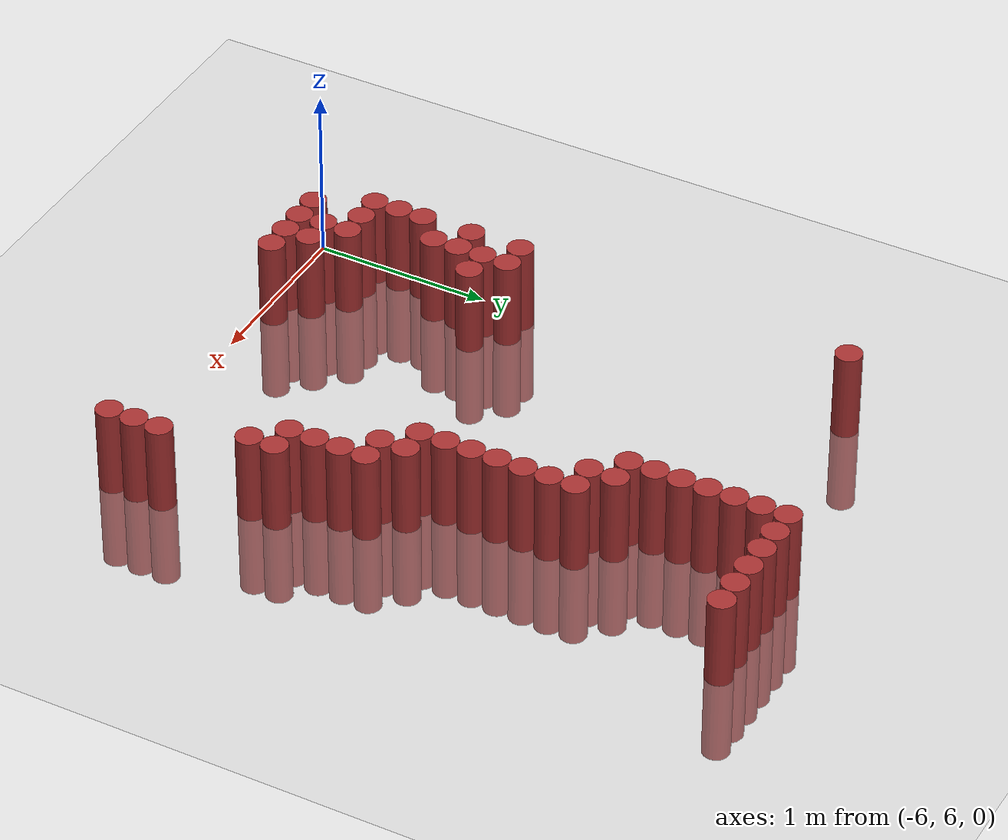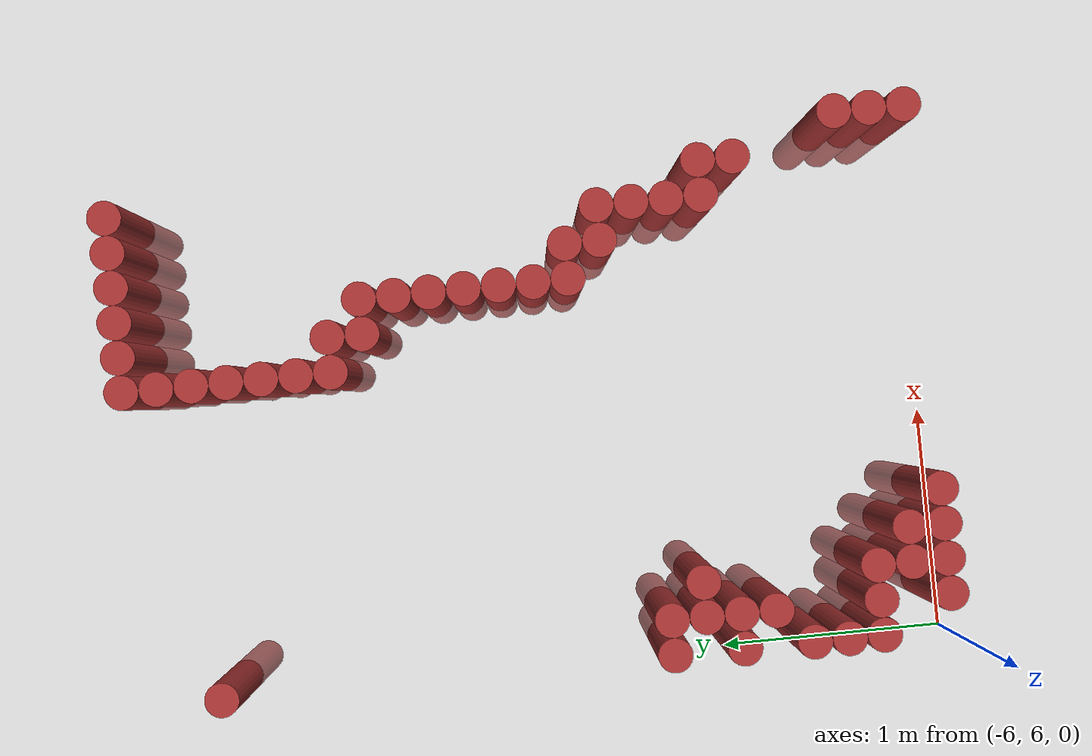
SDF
<sdf version="1.6">
 <world name="default">
  <model name="ground_plane">
   <static>1</static>
   <link name="link">
    <collision name="collision">
     <geometry><plane><normal>0 0 1</normal><size>100 100</size></plane></geometry>
     <surface><friction><ode><mu>100</mu><mu2>50</mu2></ode></friction></surface>
    </collision>
    <visual name="visual">
     <cast_shadows>0</cast_shadows>
     <geometry><plane><normal>0 0 1</normal><size>100 100</size></plane></geometry>
     <material>
      <script><uri>file://media/materials/scripts/gazebo.material</uri><name>Gazebo/Grey</name></script>
     </material>
    </visual>
   </link>
  </model>
  <model name="unit_cylinder_251">
   <static>1</static>
   <pose>-5.925000 6.375000 0.000000 0.000000 0.000000 0.000000</pose>
   <link name="link">
    <inertial>
     <mass>1</mass>
     <inertia><ixx>0.145833</ixx><ixy>0</ixy><ixz>0</ixz><iyy>0.145833</iyy><iyz>0</iyz><izz>0.125</izz></inertia>
    </inertial>
    <collision name="collision">
     <geometry><cylinder><radius>0.075000</radius><length>1</length></cylinder></geometry>
    </collision>
    <visual name="visual">
     <geometry><cylinder><radius>0.075000</radius><length>1</length></cylinder></geometry>
     <material>
      <ambient>0.648000 0.192000 0.192000 1</ambient>
      <diffuse>0.648000 0.192000 0.192000 1</diffuse>
     </material>
     <material>
      <script><name>Gazebo/Grey</name><uri>file://media/materials/scripts/gazebo.material</uri></script>
     </material>
    </visual>
   </link>
  </model>
  <model name="unit_cylinder_252">
   <static>1</static>
   <pose>-5.925000 6.525000 0.000000 0.000000 0.000000 0.000000</pose>
   <link name="link">
    <inertial>
     <mass>1</mass>
     <inertia><ixx>0.145833</ixx><ixy>0</ixy><ixz>0</ixz><iyy>0.145833</iyy><iyz>0</iyz><izz>0.125</izz></inertia>
    </inertial>
    <collision name="collision">
     <geometry><cylinder><radius>0.075000</radius><length>1</length></cylinder></geometry>
    </collision>
    <visual name="visual">
     <geometry><cylinder><radius>0.075000</radius><length>1</length></cylinder></geometry>
     <material>
      <ambient>0.648000 0.192000 0.192000 1</ambient>
      <diffuse>0.648000 0.192000 0.192000 1</diffuse>
     </material>
     <material>
      <script><name>Gazebo/Grey</name><uri>file://media/materials/scripts/gazebo.material</uri></script>
     </material>
    </visual>
   </link>
  </model>
  <model name="unit_cylinder_253">
   <static>1</static>
   <pose>-5.925000 6.675000 0.000000 0.000000 0.000000 0.000000</pose>
   <link name="link">
    <inertial>
     <mass>1</mass>
     <inertia><ixx>0.145833</ixx><ixy>0</ixy><ixz>0</ixz><iyy>0.145833</iyy><iyz>0</iyz><izz>0.125</izz></inertia>
    </inertial>
    <collision name="collision">
     <geometry><cylinder><radius>0.075000</radius><length>1</length></cylinder></geometry>
    </collision>
    <visual name="visual">
     <geometry><cylinder><radius>0.075000</radius><length>1</length></cylinder></geometry>
     <material>
      <ambient>0.648000 0.192000 0.192000 1</ambient>
      <diffuse>0.648000 0.192000 0.192000 1</diffuse>
     </material>
     <material>
      <script><name>Gazebo/Grey</name><uri>file://media/materials/scripts/gazebo.material</uri></script>
     </material>
    </visual>
   </link>
  </model>
  <model name="unit_cylinder_254">
   <static>1</static>
   <pose>-5.925000 6.975000 0.000000 0.000000 0.000000 0.000000</pose>
   <link name="link">
    <inertial>
     <mass>1</mass>
     <inertia><ixx>0.145833</ixx><ixy>0</ixy><ixz>0</ixz><iyy>0.145833</iyy><iyz>0</iyz><izz>0.125</izz></inertia>
    </inertial>
    <collision name="collision">
     <geometry><cylinder><radius>0.075000</radius><length>1</length></cylinder></geometry>
    </collision>
    <visual name="visual">
     <geometry><cylinder><radius>0.075000</radius><length>1</length></cylinder></geometry>
     <material>
      <ambient>0.648000 0.192000 0.192000 1</ambient>
      <diffuse>0.648000 0.192000 0.192000 1</diffuse>
     </material>
     <material>
      <script><name>Gazebo/Grey</name><uri>file://media/materials/scripts/gazebo.material</uri></script>
     </material>
    </visual>
   </link>
  </model>
  <model name="unit_cylinder_255">
   <static>1</static>
   <pose>-5.925000 7.275000 0.000000 0.000000 0.000000 0.000000</pose>
   <link name="link">
    <inertial>
     <mass>1</mass>
     <inertia><ixx>0.145833</ixx><ixy>0</ixy><ixz>0</ixz><iyy>0.145833</iyy><iyz>0</iyz><izz>0.125</izz></inertia>
    </inertial>
    <collision name="collision">
     <geometry><cylinder><radius>0.075000</radius><length>1</length></cylinder></geometry>
    </collision>
    <visual name="visual">
     <geometry><cylinder><radius>0.075000</radius><length>1</length></cylinder></geometry>
     <material>
      <ambient>0.648000 0.192000 0.192000 1</ambient>
      <diffuse>0.648000 0.192000 0.192000 1</diffuse>
     </material>
     <material>
      <script><name>Gazebo/Grey</name><uri>file://media/materials/scripts/gazebo.material</uri></script>
     </material>
    </visual>
   </link>
  </model>
  <model name="unit_cylinder_256">
   <static>1</static>
   <pose>-5.925000 9.225000 0.000000 0.000000 0.000000 0.000000</pose>
   <link name="link">
    <inertial>
     <mass>1</mass>
     <inertia><ixx>0.145833</ixx><ixy>0</ixy><ixz>0</ixz><iyy>0.145833</iyy><iyz>0</iyz><izz>0.125</izz></inertia>
    </inertial>
    <collision name="collision">
     <geometry><cylinder><radius>0.075000</radius><length>1</length></cylinder></geometry>
    </collision>
    <visual name="visual">
     <geometry><cylinder><radius>0.075000</radius><length>1</length></cylinder></geometry>
     <material>
      <ambient>0.648000 0.192000 0.192000 1</ambient>
      <diffuse>0.648000 0.192000 0.192000 1</diffuse>
     </material>
     <material>
      <script><name>Gazebo/Grey</name><uri>file://media/materials/scripts/gazebo.material</uri></script>
     </material>
    </visual>
   </link>
  </model>
  <model name="unit_cylinder_259">
   <static>1</static>
   <pose>-5.775000 6.075000 0.000000 0.000000 0.000000 0.000000</pose>
   <link name="link">
    <inertial>
     <mass>1</mass>
     <inertia><ixx>0.145833</ixx><ixy>0</ixy><ixz>0</ixz><iyy>0.145833</iyy><iyz>0</iyz><izz>0.125</izz></inertia>
    </inertial>
    <collision name="collision">
     <geometry><cylinder><radius>0.075000</radius><length>1</length></cylinder></geometry>
    </collision>
    <visual name="visual">
     <geometry><cylinder><radius>0.075000</radius><length>1</length></cylinder></geometry>
     <material>
      <ambient>0.648000 0.192000 0.192000 1</ambient>
      <diffuse>0.648000 0.192000 0.192000 1</diffuse>
     </material>
     <material>
      <script><name>Gazebo/Grey</name><uri>file://media/materials/scripts/gazebo.material</uri></script>
     </material>
    </visual>
   </link>
  </model>
  <model name="unit_cylinder_260">
   <static>1</static>
   <pose>-5.775000 6.375000 0.000000 0.000000 0.000000 0.000000</pose>
   <link name="link">
    <inertial>
     <mass>1</mass>
     <inertia><ixx>0.145833</ixx><ixy>0</ixy><ixz>0</ixz><iyy>0.145833</iyy><iyz>0</iyz><izz>0.125</izz></inertia>
    </inertial>
    <collision name="collision">
     <geometry><cylinder><radius>0.075000</radius><length>1</length></cylinder></geometry>
    </collision>
    <visual name="visual">
     <geometry><cylinder><radius>0.075000</radius><length>1</length></cylinder></geometry>
     <material>
      <ambient>0.648000 0.192000 0.192000 1</ambient>
      <diffuse>0.648000 0.192000 0.192000 1</diffuse>
     </material>
     <material>
      <script><name>Gazebo/Grey</name><uri>file://media/materials/scripts/gazebo.material</uri></script>
     </material>
    </visual>
   </link>
  </model>
  <model name="unit_cylinder_261">
   <static>1</static>
   <pose>-5.775000 6.825000 0.000000 0.000000 0.000000 0.000000</pose>
   <link name="link">
    <inertial>
     <mass>1</mass>
     <inertia><ixx>0.145833</ixx><ixy>0</ixy><ixz>0</ixz><iyy>0.145833</iyy><iyz>0</iyz><izz>0.125</izz></inertia>
    </inertial>
    <collision name="collision">
     <geometry><cylinder><radius>0.075000</radius><length>1</length></cylinder></geometry>
    </collision>
    <visual name="visual">
     <geometry><cylinder><radius>0.075000</radius><length>1</length></cylinder></geometry>
     <material>
      <ambient>0.648000 0.192000 0.192000 1</ambient>
      <diffuse>0.648000 0.192000 0.192000 1</diffuse>
     </material>
     <material>
      <script><name>Gazebo/Grey</name><uri>file://media/materials/scripts/gazebo.material</uri></script>
     </material>
    </visual>
   </link>
  </model>
  <model name="unit_cylinder_262">
   <static>1</static>
   <pose>-5.775000 6.975000 0.000000 0.000000 0.000000 0.000000</pose>
   <link name="link">
    <inertial>
     <mass>1</mass>
     <inertia><ixx>0.145833</ixx><ixy>0</ixy><ixz>0</ixz><iyy>0.145833</iyy><iyz>0</iyz><izz>0.125</izz></inertia>
    </inertial>
    <collision name="collision">
     <geometry><cylinder><radius>0.075000</radius><length>1</length></cylinder></geometry>
    </collision>
    <visual name="visual">
     <geometry><cylinder><radius>0.075000</radius><length>1</length></cylinder></geometry>
     <material>
      <ambient>0.648000 0.192000 0.192000 1</ambient>
      <diffuse>0.648000 0.192000 0.192000 1</diffuse>
     </material>
     <material>
      <script><name>Gazebo/Grey</name><uri>file://media/materials/scripts/gazebo.material</uri></script>
     </material>
    </visual>
   </link>
  </model>
  <model name="unit_cylinder_263">
   <static>1</static>
   <pose>-5.775000 7.125000 0.000000 0.000000 0.000000 0.000000</pose>
   <link name="link">
    <inertial>
     <mass>1</mass>
     <inertia><ixx>0.145833</ixx><ixy>0</ixy><ixz>0</ixz><iyy>0.145833</iyy><iyz>0</iyz><izz>0.125</izz></inertia>
    </inertial>
    <collision name="collision">
     <geometry><cylinder><radius>0.075000</radius><length>1</length></cylinder></geometry>
    </collision>
    <visual name="visual">
     <geometry><cylinder><radius>0.075000</radius><length>1</length></cylinder></geometry>
     <material>
      <ambient>0.648000 0.192000 0.192000 1</ambient>
      <diffuse>0.648000 0.192000 0.192000 1</diffuse>
     </material>
     <material>
      <script><name>Gazebo/Grey</name><uri>file://media/materials/scripts/gazebo.material</uri></script>
     </material>
    </visual>
   </link>
  </model>
  <model name="unit_cylinder_264">
   <static>1</static>
   <pose>-5.775000 7.275000 0.000000 0.000000 0.000000 0.000000</pose>
   <link name="link">
    <inertial>
     <mass>1</mass>
     <inertia><ixx>0.145833</ixx><ixy>0</ixy><ixz>0</ixz><iyy>0.145833</iyy><iyz>0</iyz><izz>0.125</izz></inertia>
    </inertial>
    <collision name="collision">
     <geometry><cylinder><radius>0.075000</radius><length>1</length></cylinder></geometry>
    </collision>
    <visual name="visual">
     <geometry><cylinder><radius>0.075000</radius><length>1</length></cylinder></geometry>
     <material>
      <ambient>0.648000 0.192000 0.192000 1</ambient>
      <diffuse>0.648000 0.192000 0.192000 1</diffuse>
     </material>
     <material>
      <script><name>Gazebo/Grey</name><uri>file://media/materials/scripts/gazebo.material</uri></script>
     </material>
    </visual>
   </link>
  </model>
  <model name="unit_cylinder_268">
   <static>1</static>
   <pose>-5.625000 6.075000 0.000000 0.000000 0.000000 0.000000</pose>
   <link name="link">
    <inertial>
     <mass>1</mass>
     <inertia><ixx>0.145833</ixx><ixy>0</ixy><ixz>0</ixz><iyy>0.145833</iyy><iyz>0</iyz><izz>0.125</izz></inertia>
    </inertial>
    <collision name="collision">
     <geometry><cylinder><radius>0.075000</radius><length>1</length></cylinder></geometry>
    </collision>
    <visual name="visual">
     <geometry><cylinder><radius>0.075000</radius><length>1</length></cylinder></geometry>
     <material>
      <ambient>0.648000 0.192000 0.192000 1</ambient>
      <diffuse>0.648000 0.192000 0.192000 1</diffuse>
     </material>
     <material>
      <script><name>Gazebo/Grey</name><uri>file://media/materials/scripts/gazebo.material</uri></script>
     </material>
    </visual>
   </link>
  </model>
  <model name="unit_cylinder_269">
   <static>1</static>
   <pose>-5.625000 6.225000 0.000000 0.000000 0.000000 0.000000</pose>
   <link name="link">
    <inertial>
     <mass>1</mass>
     <inertia><ixx>0.145833</ixx><ixy>0</ixy><ixz>0</ixz><iyy>0.145833</iyy><iyz>0</iyz><izz>0.125</izz></inertia>
    </inertial>
    <collision name="collision">
     <geometry><cylinder><radius>0.075000</radius><length>1</length></cylinder></geometry>
    </collision>
    <visual name="visual">
     <geometry><cylinder><radius>0.075000</radius><length>1</length></cylinder></geometry>
     <material>
      <ambient>0.648000 0.192000 0.192000 1</ambient>
      <diffuse>0.648000 0.192000 0.192000 1</diffuse>
     </material>
     <material>
      <script><name>Gazebo/Grey</name><uri>file://media/materials/scripts/gazebo.material</uri></script>
     </material>
    </visual>
   </link>
  </model>
  <model name="unit_cylinder_270">
   <static>1</static>
   <pose>-5.625000 6.375000 0.000000 0.000000 0.000000 0.000000</pose>
   <link name="link">
    <inertial>
     <mass>1</mass>
     <inertia><ixx>0.145833</ixx><ixy>0</ixy><ixz>0</ixz><iyy>0.145833</iyy><iyz>0</iyz><izz>0.125</izz></inertia>
    </inertial>
    <collision name="collision">
     <geometry><cylinder><radius>0.075000</radius><length>1</length></cylinder></geometry>
    </collision>
    <visual name="visual">
     <geometry><cylinder><radius>0.075000</radius><length>1</length></cylinder></geometry>
     <material>
      <ambient>0.648000 0.192000 0.192000 1</ambient>
      <diffuse>0.648000 0.192000 0.192000 1</diffuse>
     </material>
     <material>
      <script><name>Gazebo/Grey</name><uri>file://media/materials/scripts/gazebo.material</uri></script>
     </material>
    </visual>
   </link>
  </model>
  <model name="unit_cylinder_271">
   <static>1</static>
   <pose>-5.625000 7.125000 0.000000 0.000000 0.000000 0.000000</pose>
   <link name="link">
    <inertial>
     <mass>1</mass>
     <inertia><ixx>0.145833</ixx><ixy>0</ixy><ixz>0</ixz><iyy>0.145833</iyy><iyz>0</iyz><izz>0.125</izz></inertia>
    </inertial>
    <collision name="collision">
     <geometry><cylinder><radius>0.075000</radius><length>1</length></cylinder></geometry>
    </collision>
    <visual name="visual">
     <geometry><cylinder><radius>0.075000</radius><length>1</length></cylinder></geometry>
     <material>
      <ambient>0.648000 0.192000 0.192000 1</ambient>
      <diffuse>0.648000 0.192000 0.192000 1</diffuse>
     </material>
     <material>
      <script><name>Gazebo/Grey</name><uri>file://media/materials/scripts/gazebo.material</uri></script>
     </material>
    </visual>
   </link>
  </model>
  <model name="unit_cylinder_275">
   <static>1</static>
   <pose>-5.475000 6.075000 0.000000 0.000000 0.000000 0.000000</pose>
   <link name="link">
    <inertial>
     <mass>1</mass>
     <inertia><ixx>0.145833</ixx><ixy>0</ixy><ixz>0</ixz><iyy>0.145833</iyy><iyz>0</iyz><izz>0.125</izz></inertia>
    </inertial>
    <collision name="collision">
     <geometry><cylinder><radius>0.075000</radius><length>1</length></cylinder></geometry>
    </collision>
    <visual name="visual">
     <geometry><cylinder><radius>0.075000</radius><length>1</length></cylinder></geometry>
     <material>
      <ambient>0.648000 0.192000 0.192000 1</ambient>
      <diffuse>0.648000 0.192000 0.192000 1</diffuse>
     </material>
     <material>
      <script><name>Gazebo/Grey</name><uri>file://media/materials/scripts/gazebo.material</uri></script>
     </material>
    </visual>
   </link>
  </model>
  <model name="unit_cylinder_276">
   <static>1</static>
   <pose>-5.475000 6.225000 0.000000 0.000000 0.000000 0.000000</pose>
   <link name="link">
    <inertial>
     <mass>1</mass>
     <inertia><ixx>0.145833</ixx><ixy>0</ixy><ixz>0</ixz><iyy>0.145833</iyy><iyz>0</iyz><izz>0.125</izz></inertia>
    </inertial>
    <collision name="collision">
     <geometry><cylinder><radius>0.075000</radius><length>1</length></cylinder></geometry>
    </collision>
    <visual name="visual">
     <geometry><cylinder><radius>0.075000</radius><length>1</length></cylinder></geometry>
     <material>
      <ambient>0.648000 0.192000 0.192000 1</ambient>
      <diffuse>0.648000 0.192000 0.192000 1</diffuse>
     </material>
     <material>
      <script><name>Gazebo/Grey</name><uri>file://media/materials/scripts/gazebo.material</uri></script>
     </material>
    </visual>
   </link>
  </model>
  <model name="unit_cylinder_281">
   <static>1</static>
   <pose>-5.325000 6.075000 0.000000 0.000000 0.000000 0.000000</pose>
   <link name="link">
    <inertial>
     <mass>1</mass>
     <inertia><ixx>0.145833</ixx><ixy>0</ixy><ixz>0</ixz><iyy>0.145833</iyy><iyz>0</iyz><izz>0.125</izz></inertia>
    </inertial>
    <collision name="collision">
     <geometry><cylinder><radius>0.075000</radius><length>1</length></cylinder></geometry>
    </collision>
    <visual name="visual">
     <geometry><cylinder><radius>0.075000</radius><length>1</length></cylinder></geometry>
     <material>
      <ambient>0.648000 0.192000 0.192000 1</ambient>
      <diffuse>0.648000 0.192000 0.192000 1</diffuse>
     </material>
     <material>
      <script><name>Gazebo/Grey</name><uri>file://media/materials/scripts/gazebo.material</uri></script>
     </material>
    </visual>
   </link>
  </model>
  <model name="unit_cylinder_288">
   <static>1</static>
   <pose>-4.575000 8.625000 0.000000 0.000000 0.000000 0.000000</pose>
   <link name="link">
    <inertial>
     <mass>1</mass>
     <inertia><ixx>0.145833</ixx><ixy>0</ixy><ixz>0</ixz><iyy>0.145833</iyy><iyz>0</iyz><izz>0.125</izz></inertia>
    </inertial>
    <collision name="collision">
     <geometry><cylinder><radius>0.075000</radius><length>1</length></cylinder></geometry>
    </collision>
    <visual name="visual">
     <geometry><cylinder><radius>0.075000</radius><length>1</length></cylinder></geometry>
     <material>
      <ambient>0.648000 0.192000 0.192000 1</ambient>
      <diffuse>0.648000 0.192000 0.192000 1</diffuse>
     </material>
     <material>
      <script><name>Gazebo/Grey</name><uri>file://media/materials/scripts/gazebo.material</uri></script>
     </material>
    </visual>
   </link>
  </model>
  <model name="unit_cylinder_289">
   <static>1</static>
   <pose>-4.575000 8.775000 0.000000 0.000000 0.000000 0.000000</pose>
   <link name="link">
    <inertial>
     <mass>1</mass>
     <inertia><ixx>0.145833</ixx><ixy>0</ixy><ixz>0</ixz><iyy>0.145833</iyy><iyz>0</iyz><izz>0.125</izz></inertia>
    </inertial>
    <collision name="collision">
     <geometry><cylinder><radius>0.075000</radius><length>1</length></cylinder></geometry>
    </collision>
    <visual name="visual">
     <geometry><cylinder><radius>0.075000</radius><length>1</length></cylinder></geometry>
     <material>
      <ambient>0.648000 0.192000 0.192000 1</ambient>
      <diffuse>0.648000 0.192000 0.192000 1</diffuse>
     </material>
     <material>
      <script><name>Gazebo/Grey</name><uri>file://media/materials/scripts/gazebo.material</uri></script>
     </material>
    </visual>
   </link>
  </model>
  <model name="unit_cylinder_290">
   <static>1</static>
   <pose>-4.575000 8.925000 0.000000 0.000000 0.000000 0.000000</pose>
   <link name="link">
    <inertial>
     <mass>1</mass>
     <inertia><ixx>0.145833</ixx><ixy>0</ixy><ixz>0</ixz><iyy>0.145833</iyy><iyz>0</iyz><izz>0.125</izz></inertia>
    </inertial>
    <collision name="collision">
     <geometry><cylinder><radius>0.075000</radius><length>1</length></cylinder></geometry>
    </collision>
    <visual name="visual">
     <geometry><cylinder><radius>0.075000</radius><length>1</length></cylinder></geometry>
     <material>
      <ambient>0.648000 0.192000 0.192000 1</ambient>
      <diffuse>0.648000 0.192000 0.192000 1</diffuse>
     </material>
     <material>
      <script><name>Gazebo/Grey</name><uri>file://media/materials/scripts/gazebo.material</uri></script>
     </material>
    </visual>
   </link>
  </model>
  <model name="unit_cylinder_291">
   <static>1</static>
   <pose>-4.575000 9.075000 0.000000 0.000000 0.000000 0.000000</pose>
   <link name="link">
    <inertial>
     <mass>1</mass>
     <inertia><ixx>0.145833</ixx><ixy>0</ixy><ixz>0</ixz><iyy>0.145833</iyy><iyz>0</iyz><izz>0.125</izz></inertia>
    </inertial>
    <collision name="collision">
     <geometry><cylinder><radius>0.075000</radius><length>1</length></cylinder></geometry>
    </collision>
    <visual name="visual">
     <geometry><cylinder><radius>0.075000</radius><length>1</length></cylinder></geometry>
     <material>
      <ambient>0.648000 0.192000 0.192000 1</ambient>
      <diffuse>0.648000 0.192000 0.192000 1</diffuse>
     </material>
     <material>
      <script><name>Gazebo/Grey</name><uri>file://media/materials/scripts/gazebo.material</uri></script>
     </material>
    </visual>
   </link>
  </model>
  <model name="unit_cylinder_292">
   <static>1</static>
   <pose>-4.575000 9.225000 0.000000 0.000000 0.000000 0.000000</pose>
   <link name="link">
    <inertial>
     <mass>1</mass>
     <inertia><ixx>0.145833</ixx><ixy>0</ixy><ixz>0</ixz><iyy>0.145833</iyy><iyz>0</iyz><izz>0.125</izz></inertia>
    </inertial>
    <collision name="collision">
     <geometry><cylinder><radius>0.075000</radius><length>1</length></cylinder></geometry>
    </collision>
    <visual name="visual">
     <geometry><cylinder><radius>0.075000</radius><length>1</length></cylinder></geometry>
     <material>
      <ambient>0.648000 0.192000 0.192000 1</ambient>
      <diffuse>0.648000 0.192000 0.192000 1</diffuse>
     </material>
     <material>
      <script><name>Gazebo/Grey</name><uri>file://media/materials/scripts/gazebo.material</uri></script>
     </material>
    </visual>
   </link>
  </model>
  <model name="unit_cylinder_293">
   <static>1</static>
   <pose>-4.575000 9.375000 0.000000 0.000000 0.000000 0.000000</pose>
   <link name="link">
    <inertial>
     <mass>1</mass>
     <inertia><ixx>0.145833</ixx><ixy>0</ixy><ixz>0</ixz><iyy>0.145833</iyy><iyz>0</iyz><izz>0.125</izz></inertia>
    </inertial>
    <collision name="collision">
     <geometry><cylinder><radius>0.075000</radius><length>1</length></cylinder></geometry>
    </collision>
    <visual name="visual">
     <geometry><cylinder><radius>0.075000</radius><length>1</length></cylinder></geometry>
     <material>
      <ambient>0.648000 0.192000 0.192000 1</ambient>
      <diffuse>0.648000 0.192000 0.192000 1</diffuse>
     </material>
     <material>
      <script><name>Gazebo/Grey</name><uri>file://media/materials/scripts/gazebo.material</uri></script>
     </material>
    </visual>
   </link>
  </model>
  <model name="unit_cylinder_294">
   <static>1</static>
   <pose>-4.575000 9.525000 0.000000 0.000000 0.000000 0.000000</pose>
   <link name="link">
    <inertial>
     <mass>1</mass>
     <inertia><ixx>0.145833</ixx><ixy>0</ixy><ixz>0</ixz><iyy>0.145833</iyy><iyz>0</iyz><izz>0.125</izz></inertia>
    </inertial>
    <collision name="collision">
     <geometry><cylinder><radius>0.075000</radius><length>1</length></cylinder></geometry>
    </collision>
    <visual name="visual">
     <geometry><cylinder><radius>0.075000</radius><length>1</length></cylinder></geometry>
     <material>
      <ambient>0.648000 0.192000 0.192000 1</ambient>
      <diffuse>0.648000 0.192000 0.192000 1</diffuse>
     </material>
     <material>
      <script><name>Gazebo/Grey</name><uri>file://media/materials/scripts/gazebo.material</uri></script>
     </material>
    </visual>
   </link>
  </model>
  <model name="unit_cylinder_295">
   <static>1</static>
   <pose>-4.425000 8.475000 0.000000 0.000000 0.000000 0.000000</pose>
   <link name="link">
    <inertial>
     <mass>1</mass>
     <inertia><ixx>0.145833</ixx><ixy>0</ixy><ixz>0</ixz><iyy>0.145833</iyy><iyz>0</iyz><izz>0.125</izz></inertia>
    </inertial>
    <collision name="collision">
     <geometry><cylinder><radius>0.075000</radius><length>1</length></cylinder></geometry>
    </collision>
    <visual name="visual">
     <geometry><cylinder><radius>0.075000</radius><length>1</length></cylinder></geometry>
     <material>
      <ambient>0.648000 0.192000 0.192000 1</ambient>
      <diffuse>0.648000 0.192000 0.192000 1</diffuse>
     </material>
     <material>
      <script><name>Gazebo/Grey</name><uri>file://media/materials/scripts/gazebo.material</uri></script>
     </material>
    </visual>
   </link>
  </model>
  <model name="unit_cylinder_296">
   <static>1</static>
   <pose>-4.425000 8.625000 0.000000 0.000000 0.000000 0.000000</pose>
   <link name="link">
    <inertial>
     <mass>1</mass>
     <inertia><ixx>0.145833</ixx><ixy>0</ixy><ixz>0</ixz><iyy>0.145833</iyy><iyz>0</iyz><izz>0.125</izz></inertia>
    </inertial>
    <collision name="collision">
     <geometry><cylinder><radius>0.075000</radius><length>1</length></cylinder></geometry>
    </collision>
    <visual name="visual">
     <geometry><cylinder><radius>0.075000</radius><length>1</length></cylinder></geometry>
     <material>
      <ambient>0.648000 0.192000 0.192000 1</ambient>
      <diffuse>0.648000 0.192000 0.192000 1</diffuse>
     </material>
     <material>
      <script><name>Gazebo/Grey</name><uri>file://media/materials/scripts/gazebo.material</uri></script>
     </material>
    </visual>
   </link>
  </model>
  <model name="unit_cylinder_297">
   <static>1</static>
   <pose>-4.425000 9.525000 0.000000 0.000000 0.000000 0.000000</pose>
   <link name="link">
    <inertial>
     <mass>1</mass>
     <inertia><ixx>0.145833</ixx><ixy>0</ixy><ixz>0</ixz><iyy>0.145833</iyy><iyz>0</iyz><izz>0.125</izz></inertia>
    </inertial>
    <collision name="collision">
     <geometry><cylinder><radius>0.075000</radius><length>1</length></cylinder></geometry>
    </collision>
    <visual name="visual">
     <geometry><cylinder><radius>0.075000</radius><length>1</length></cylinder></geometry>
     <material>
      <ambient>0.648000 0.192000 0.192000 1</ambient>
      <diffuse>0.648000 0.192000 0.192000 1</diffuse>
     </material>
     <material>
      <script><name>Gazebo/Grey</name><uri>file://media/materials/scripts/gazebo.material</uri></script>
     </material>
    </visual>
   </link>
  </model>
  <model name="unit_cylinder_298">
   <static>1</static>
   <pose>-4.275000 7.575000 0.000000 0.000000 0.000000 0.000000</pose>
   <link name="link">
    <inertial>
     <mass>1</mass>
     <inertia><ixx>0.145833</ixx><ixy>0</ixy><ixz>0</ixz><iyy>0.145833</iyy><iyz>0</iyz><izz>0.125</izz></inertia>
    </inertial>
    <collision name="collision">
     <geometry><cylinder><radius>0.075000</radius><length>1</length></cylinder></geometry>
    </collision>
    <visual name="visual">
     <geometry><cylinder><radius>0.075000</radius><length>1</length></cylinder></geometry>
     <material>
      <ambient>0.648000 0.192000 0.192000 1</ambient>
      <diffuse>0.648000 0.192000 0.192000 1</diffuse>
     </material>
     <material>
      <script><name>Gazebo/Grey</name><uri>file://media/materials/scripts/gazebo.material</uri></script>
     </material>
    </visual>
   </link>
  </model>
  <model name="unit_cylinder_299">
   <static>1</static>
   <pose>-4.275000 7.725000 0.000000 0.000000 0.000000 0.000000</pose>
   <link name="link">
    <inertial>
     <mass>1</mass>
     <inertia><ixx>0.145833</ixx><ixy>0</ixy><ixz>0</ixz><iyy>0.145833</iyy><iyz>0</iyz><izz>0.125</izz></inertia>
    </inertial>
    <collision name="collision">
     <geometry><cylinder><radius>0.075000</radius><length>1</length></cylinder></geometry>
    </collision>
    <visual name="visual">
     <geometry><cylinder><radius>0.075000</radius><length>1</length></cylinder></geometry>
     <material>
      <ambient>0.648000 0.192000 0.192000 1</ambient>
      <diffuse>0.648000 0.192000 0.192000 1</diffuse>
     </material>
     <material>
      <script><name>Gazebo/Grey</name><uri>file://media/materials/scripts/gazebo.material</uri></script>
     </material>
    </visual>
   </link>
  </model>
  <model name="unit_cylinder_300">
   <static>1</static>
   <pose>-4.275000 7.875000 0.000000 0.000000 0.000000 0.000000</pose>
   <link name="link">
    <inertial>
     <mass>1</mass>
     <inertia><ixx>0.145833</ixx><ixy>0</ixy><ixz>0</ixz><iyy>0.145833</iyy><iyz>0</iyz><izz>0.125</izz></inertia>
    </inertial>
    <collision name="collision">
     <geometry><cylinder><radius>0.075000</radius><length>1</length></cylinder></geometry>
    </collision>
    <visual name="visual">
     <geometry><cylinder><radius>0.075000</radius><length>1</length></cylinder></geometry>
     <material>
      <ambient>0.648000 0.192000 0.192000 1</ambient>
      <diffuse>0.648000 0.192000 0.192000 1</diffuse>
     </material>
     <material>
      <script><name>Gazebo/Grey</name><uri>file://media/materials/scripts/gazebo.material</uri></script>
     </material>
    </visual>
   </link>
  </model>
  <model name="unit_cylinder_301">
   <static>1</static>
   <pose>-4.275000 8.025000 0.000000 0.000000 0.000000 0.000000</pose>
   <link name="link">
    <inertial>
     <mass>1</mass>
     <inertia><ixx>0.145833</ixx><ixy>0</ixy><ixz>0</ixz><iyy>0.145833</iyy><iyz>0</iyz><izz>0.125</izz></inertia>
    </inertial>
    <collision name="collision">
     <geometry><cylinder><radius>0.075000</radius><length>1</length></cylinder></geometry>
    </collision>
    <visual name="visual">
     <geometry><cylinder><radius>0.075000</radius><length>1</length></cylinder></geometry>
     <material>
      <ambient>0.648000 0.192000 0.192000 1</ambient>
      <diffuse>0.648000 0.192000 0.192000 1</diffuse>
     </material>
     <material>
      <script><name>Gazebo/Grey</name><uri>file://media/materials/scripts/gazebo.material</uri></script>
     </material>
    </visual>
   </link>
  </model>
  <model name="unit_cylinder_302">
   <static>1</static>
   <pose>-4.275000 8.175000 0.000000 0.000000 0.000000 0.000000</pose>
   <link name="link">
    <inertial>
     <mass>1</mass>
     <inertia><ixx>0.145833</ixx><ixy>0</ixy><ixz>0</ixz><iyy>0.145833</iyy><iyz>0</iyz><izz>0.125</izz></inertia>
    </inertial>
    <collision name="collision">
     <geometry><cylinder><radius>0.075000</radius><length>1</length></cylinder></geometry>
    </collision>
    <visual name="visual">
     <geometry><cylinder><radius>0.075000</radius><length>1</length></cylinder></geometry>
     <material>
      <ambient>0.648000 0.192000 0.192000 1</ambient>
      <diffuse>0.648000 0.192000 0.192000 1</diffuse>
     </material>
     <material>
      <script><name>Gazebo/Grey</name><uri>file://media/materials/scripts/gazebo.material</uri></script>
     </material>
    </visual>
   </link>
  </model>
  <model name="unit_cylinder_303">
   <static>1</static>
   <pose>-4.275000 8.325000 0.000000 0.000000 0.000000 0.000000</pose>
   <link name="link">
    <inertial>
     <mass>1</mass>
     <inertia><ixx>0.145833</ixx><ixy>0</ixy><ixz>0</ixz><iyy>0.145833</iyy><iyz>0</iyz><izz>0.125</izz></inertia>
    </inertial>
    <collision name="collision">
     <geometry><cylinder><radius>0.075000</radius><length>1</length></cylinder></geometry>
    </collision>
    <visual name="visual">
     <geometry><cylinder><radius>0.075000</radius><length>1</length></cylinder></geometry>
     <material>
      <ambient>0.648000 0.192000 0.192000 1</ambient>
      <diffuse>0.648000 0.192000 0.192000 1</diffuse>
     </material>
     <material>
      <script><name>Gazebo/Grey</name><uri>file://media/materials/scripts/gazebo.material</uri></script>
     </material>
    </visual>
   </link>
  </model>
  <model name="unit_cylinder_304">
   <static>1</static>
   <pose>-4.275000 8.475000 0.000000 0.000000 0.000000 0.000000</pose>
   <link name="link">
    <inertial>
     <mass>1</mass>
     <inertia><ixx>0.145833</ixx><ixy>0</ixy><ixz>0</ixz><iyy>0.145833</iyy><iyz>0</iyz><izz>0.125</izz></inertia>
    </inertial>
    <collision name="collision">
     <geometry><cylinder><radius>0.075000</radius><length>1</length></cylinder></geometry>
    </collision>
    <visual name="visual">
     <geometry><cylinder><radius>0.075000</radius><length>1</length></cylinder></geometry>
     <material>
      <ambient>0.648000 0.192000 0.192000 1</ambient>
      <diffuse>0.648000 0.192000 0.192000 1</diffuse>
     </material>
     <material>
      <script><name>Gazebo/Grey</name><uri>file://media/materials/scripts/gazebo.material</uri></script>
     </material>
    </visual>
   </link>
  </model>
  <model name="unit_cylinder_305">
   <static>1</static>
   <pose>-4.275000 9.525000 0.000000 0.000000 0.000000 0.000000</pose>
   <link name="link">
    <inertial>
     <mass>1</mass>
     <inertia><ixx>0.145833</ixx><ixy>0</ixy><ixz>0</ixz><iyy>0.145833</iyy><iyz>0</iyz><izz>0.125</izz></inertia>
    </inertial>
    <collision name="collision">
     <geometry><cylinder><radius>0.075000</radius><length>1</length></cylinder></geometry>
    </collision>
    <visual name="visual">
     <geometry><cylinder><radius>0.075000</radius><length>1</length></cylinder></geometry>
     <material>
      <ambient>0.648000 0.192000 0.192000 1</ambient>
      <diffuse>0.648000 0.192000 0.192000 1</diffuse>
     </material>
     <material>
      <script><name>Gazebo/Grey</name><uri>file://media/materials/scripts/gazebo.material</uri></script>
     </material>
    </visual>
   </link>
  </model>
  <model name="unit_cylinder_306">
   <static>1</static>
   <pose>-4.125000 7.425000 0.000000 0.000000 0.000000 0.000000</pose>
   <link name="link">
    <inertial>
     <mass>1</mass>
     <inertia><ixx>0.145833</ixx><ixy>0</ixy><ixz>0</ixz><iyy>0.145833</iyy><iyz>0</iyz><izz>0.125</izz></inertia>
    </inertial>
    <collision name="collision">
     <geometry><cylinder><radius>0.075000</radius><length>1</length></cylinder></geometry>
    </collision>
    <visual name="visual">
     <geometry><cylinder><radius>0.075000</radius><length>1</length></cylinder></geometry>
     <material>
      <ambient>0.648000 0.192000 0.192000 1</ambient>
      <diffuse>0.648000 0.192000 0.192000 1</diffuse>
     </material>
     <material>
      <script><name>Gazebo/Grey</name><uri>file://media/materials/scripts/gazebo.material</uri></script>
     </material>
    </visual>
   </link>
  </model>
  <model name="unit_cylinder_307">
   <static>1</static>
   <pose>-4.125000 7.575000 0.000000 0.000000 0.000000 0.000000</pose>
   <link name="link">
    <inertial>
     <mass>1</mass>
     <inertia><ixx>0.145833</ixx><ixy>0</ixy><ixz>0</ixz><iyy>0.145833</iyy><iyz>0</iyz><izz>0.125</izz></inertia>
    </inertial>
    <collision name="collision">
     <geometry><cylinder><radius>0.075000</radius><length>1</length></cylinder></geometry>
    </collision>
    <visual name="visual">
     <geometry><cylinder><radius>0.075000</radius><length>1</length></cylinder></geometry>
     <material>
      <ambient>0.648000 0.192000 0.192000 1</ambient>
      <diffuse>0.648000 0.192000 0.192000 1</diffuse>
     </material>
     <material>
      <script><name>Gazebo/Grey</name><uri>file://media/materials/scripts/gazebo.material</uri></script>
     </material>
    </visual>
   </link>
  </model>
  <model name="unit_cylinder_308">
   <static>1</static>
   <pose>-4.125000 9.525000 0.000000 0.000000 0.000000 0.000000</pose>
   <link name="link">
    <inertial>
     <mass>1</mass>
     <inertia><ixx>0.145833</ixx><ixy>0</ixy><ixz>0</ixz><iyy>0.145833</iyy><iyz>0</iyz><izz>0.125</izz></inertia>
    </inertial>
    <collision name="collision">
     <geometry><cylinder><radius>0.075000</radius><length>1</length></cylinder></geometry>
    </collision>
    <visual name="visual">
     <geometry><cylinder><radius>0.075000</radius><length>1</length></cylinder></geometry>
     <material>
      <ambient>0.648000 0.192000 0.192000 1</ambient>
      <diffuse>0.648000 0.192000 0.192000 1</diffuse>
     </material>
     <material>
      <script><name>Gazebo/Grey</name><uri>file://media/materials/scripts/gazebo.material</uri></script>
     </material>
    </visual>
   </link>
  </model>
  <model name="unit_cylinder_309">
   <static>1</static>
   <pose>-3.975000 6.975000 0.000000 0.000000 0.000000 0.000000</pose>
   <link name="link">
    <inertial>
     <mass>1</mass>
     <inertia><ixx>0.145833</ixx><ixy>0</ixy><ixz>0</ixz><iyy>0.145833</iyy><iyz>0</iyz><izz>0.125</izz></inertia>
    </inertial>
    <collision name="collision">
     <geometry><cylinder><radius>0.075000</radius><length>1</length></cylinder></geometry>
    </collision>
    <visual name="visual">
     <geometry><cylinder><radius>0.075000</radius><length>1</length></cylinder></geometry>
     <material>
      <ambient>0.648000 0.192000 0.192000 1</ambient>
      <diffuse>0.648000 0.192000 0.192000 1</diffuse>
     </material>
     <material>
      <script><name>Gazebo/Grey</name><uri>file://media/materials/scripts/gazebo.material</uri></script>
     </material>
    </visual>
   </link>
  </model>
  <model name="unit_cylinder_310">
   <static>1</static>
   <pose>-3.975000 7.125000 0.000000 0.000000 0.000000 0.000000</pose>
   <link name="link">
    <inertial>
     <mass>1</mass>
     <inertia><ixx>0.145833</ixx><ixy>0</ixy><ixz>0</ixz><iyy>0.145833</iyy><iyz>0</iyz><izz>0.125</izz></inertia>
    </inertial>
    <collision name="collision">
     <geometry><cylinder><radius>0.075000</radius><length>1</length></cylinder></geometry>
    </collision>
    <visual name="visual">
     <geometry><cylinder><radius>0.075000</radius><length>1</length></cylinder></geometry>
     <material>
      <ambient>0.648000 0.192000 0.192000 1</ambient>
      <diffuse>0.648000 0.192000 0.192000 1</diffuse>
     </material>
     <material>
      <script><name>Gazebo/Grey</name><uri>file://media/materials/scripts/gazebo.material</uri></script>
     </material>
    </visual>
   </link>
  </model>
  <model name="unit_cylinder_311">
   <static>1</static>
   <pose>-3.975000 7.275000 0.000000 0.000000 0.000000 0.000000</pose>
   <link name="link">
    <inertial>
     <mass>1</mass>
     <inertia><ixx>0.145833</ixx><ixy>0</ixy><ixz>0</ixz><iyy>0.145833</iyy><iyz>0</iyz><izz>0.125</izz></inertia>
    </inertial>
    <collision name="collision">
     <geometry><cylinder><radius>0.075000</radius><length>1</length></cylinder></geometry>
    </collision>
    <visual name="visual">
     <geometry><cylinder><radius>0.075000</radius><length>1</length></cylinder></geometry>
     <material>
      <ambient>0.648000 0.192000 0.192000 1</ambient>
      <diffuse>0.648000 0.192000 0.192000 1</diffuse>
     </material>
     <material>
      <script><name>Gazebo/Grey</name><uri>file://media/materials/scripts/gazebo.material</uri></script>
     </material>
    </visual>
   </link>
  </model>
  <model name="unit_cylinder_312">
   <static>1</static>
   <pose>-3.975000 7.425000 0.000000 0.000000 0.000000 0.000000</pose>
   <link name="link">
    <inertial>
     <mass>1</mass>
     <inertia><ixx>0.145833</ixx><ixy>0</ixy><ixz>0</ixz><iyy>0.145833</iyy><iyz>0</iyz><izz>0.125</izz></inertia>
    </inertial>
    <collision name="collision">
     <geometry><cylinder><radius>0.075000</radius><length>1</length></cylinder></geometry>
    </collision>
    <visual name="visual">
     <geometry><cylinder><radius>0.075000</radius><length>1</length></cylinder></geometry>
     <material>
      <ambient>0.648000 0.192000 0.192000 1</ambient>
      <diffuse>0.648000 0.192000 0.192000 1</diffuse>
     </material>
     <material>
      <script><name>Gazebo/Grey</name><uri>file://media/materials/scripts/gazebo.material</uri></script>
     </material>
    </visual>
   </link>
  </model>
  <model name="unit_cylinder_313">
   <static>1</static>
   <pose>-3.975000 9.525000 0.000000 0.000000 0.000000 0.000000</pose>
   <link name="link">
    <inertial>
     <mass>1</mass>
     <inertia><ixx>0.145833</ixx><ixy>0</ixy><ixz>0</ixz><iyy>0.145833</iyy><iyz>0</iyz><izz>0.125</izz></inertia>
    </inertial>
    <collision name="collision">
     <geometry><cylinder><radius>0.075000</radius><length>1</length></cylinder></geometry>
    </collision>
    <visual name="visual">
     <geometry><cylinder><radius>0.075000</radius><length>1</length></cylinder></geometry>
     <material>
      <ambient>0.648000 0.192000 0.192000 1</ambient>
      <diffuse>0.648000 0.192000 0.192000 1</diffuse>
     </material>
     <material>
      <script><name>Gazebo/Grey</name><uri>file://media/materials/scripts/gazebo.material</uri></script>
     </material>
    </visual>
   </link>
  </model>
  <model name="unit_cylinder_314">
   <static>1</static>
   <pose>-3.825000 6.825000 0.000000 0.000000 0.000000 0.000000</pose>
   <link name="link">
    <inertial>
     <mass>1</mass>
     <inertia><ixx>0.145833</ixx><ixy>0</ixy><ixz>0</ixz><iyy>0.145833</iyy><iyz>0</iyz><izz>0.125</izz></inertia>
    </inertial>
    <collision name="collision">
     <geometry><cylinder><radius>0.075000</radius><length>1</length></cylinder></geometry>
    </collision>
    <visual name="visual">
     <geometry><cylinder><radius>0.075000</radius><length>1</length></cylinder></geometry>
     <material>
      <ambient>0.648000 0.192000 0.192000 1</ambient>
      <diffuse>0.648000 0.192000 0.192000 1</diffuse>
     </material>
     <material>
      <script><name>Gazebo/Grey</name><uri>file://media/materials/scripts/gazebo.material</uri></script>
     </material>
    </visual>
   </link>
  </model>
  <model name="unit_cylinder_315">
   <static>1</static>
   <pose>-3.825000 6.975000 0.000000 0.000000 0.000000 0.000000</pose>
   <link name="link">
    <inertial>
     <mass>1</mass>
     <inertia><ixx>0.145833</ixx><ixy>0</ixy><ixz>0</ixz><iyy>0.145833</iyy><iyz>0</iyz><izz>0.125</izz></inertia>
    </inertial>
    <collision name="collision">
     <geometry><cylinder><radius>0.075000</radius><length>1</length></cylinder></geometry>
    </collision>
    <visual name="visual">
     <geometry><cylinder><radius>0.075000</radius><length>1</length></cylinder></geometry>
     <material>
      <ambient>0.648000 0.192000 0.192000 1</ambient>
      <diffuse>0.648000 0.192000 0.192000 1</diffuse>
     </material>
     <material>
      <script><name>Gazebo/Grey</name><uri>file://media/materials/scripts/gazebo.material</uri></script>
     </material>
    </visual>
   </link>
  </model>
  <model name="unit_cylinder_316">
   <static>1</static>
   <pose>-3.825000 9.525000 0.000000 0.000000 0.000000 0.000000</pose>
   <link name="link">
    <inertial>
     <mass>1</mass>
     <inertia><ixx>0.145833</ixx><ixy>0</ixy><ixz>0</ixz><iyy>0.145833</iyy><iyz>0</iyz><izz>0.125</izz></inertia>
    </inertial>
    <collision name="collision">
     <geometry><cylinder><radius>0.075000</radius><length>1</length></cylinder></geometry>
    </collision>
    <visual name="visual">
     <geometry><cylinder><radius>0.075000</radius><length>1</length></cylinder></geometry>
     <material>
      <ambient>0.648000 0.192000 0.192000 1</ambient>
      <diffuse>0.648000 0.192000 0.192000 1</diffuse>
     </material>
     <material>
      <script><name>Gazebo/Grey</name><uri>file://media/materials/scripts/gazebo.material</uri></script>
     </material>
    </visual>
   </link>
  </model>
  <model name="unit_cylinder_323">
   <static>1</static>
   <pose>-3.675000 6.075000 0.000000 0.000000 0.000000 0.000000</pose>
   <link name="link">
    <inertial>
     <mass>1</mass>
     <inertia><ixx>0.145833</ixx><ixy>0</ixy><ixz>0</ixz><iyy>0.145833</iyy><iyz>0</iyz><izz>0.125</izz></inertia>
    </inertial>
    <collision name="collision">
     <geometry><cylinder><radius>0.075000</radius><length>1</length></cylinder></geometry>
    </collision>
    <visual name="visual">
     <geometry><cylinder><radius>0.075000</radius><length>1</length></cylinder></geometry>
     <material>
      <ambient>0.648000 0.192000 0.192000 1</ambient>
      <diffuse>0.648000 0.192000 0.192000 1</diffuse>
     </material>
     <material>
      <script><name>Gazebo/Grey</name><uri>file://media/materials/scripts/gazebo.material</uri></script>
     </material>
    </visual>
   </link>
  </model>
  <model name="unit_cylinder_324">
   <static>1</static>
   <pose>-3.675000 6.225000 0.000000 0.000000 0.000000 0.000000</pose>
   <link name="link">
    <inertial>
     <mass>1</mass>
     <inertia><ixx>0.145833</ixx><ixy>0</ixy><ixz>0</ixz><iyy>0.145833</iyy><iyz>0</iyz><izz>0.125</izz></inertia>
    </inertial>
    <collision name="collision">
     <geometry><cylinder><radius>0.075000</radius><length>1</length></cylinder></geometry>
    </collision>
    <visual name="visual">
     <geometry><cylinder><radius>0.075000</radius><length>1</length></cylinder></geometry>
     <material>
      <ambient>0.648000 0.192000 0.192000 1</ambient>
      <diffuse>0.648000 0.192000 0.192000 1</diffuse>
     </material>
     <material>
      <script><name>Gazebo/Grey</name><uri>file://media/materials/scripts/gazebo.material</uri></script>
     </material>
    </visual>
   </link>
  </model>
  <model name="unit_cylinder_325">
   <static>1</static>
   <pose>-3.675000 6.375000 0.000000 0.000000 0.000000 0.000000</pose>
   <link name="link">
    <inertial>
     <mass>1</mass>
     <inertia><ixx>0.145833</ixx><ixy>0</ixy><ixz>0</ixz><iyy>0.145833</iyy><iyz>0</iyz><izz>0.125</izz></inertia>
    </inertial>
    <collision name="collision">
     <geometry><cylinder><radius>0.075000</radius><length>1</length></cylinder></geometry>
    </collision>
    <visual name="visual">
     <geometry><cylinder><radius>0.075000</radius><length>1</length></cylinder></geometry>
     <material>
      <ambient>0.648000 0.192000 0.192000 1</ambient>
      <diffuse>0.648000 0.192000 0.192000 1</diffuse>
     </material>
     <material>
      <script><name>Gazebo/Grey</name><uri>file://media/materials/scripts/gazebo.material</uri></script>
     </material>
    </visual>
   </link>
  </model>
 </world>
</sdf>
